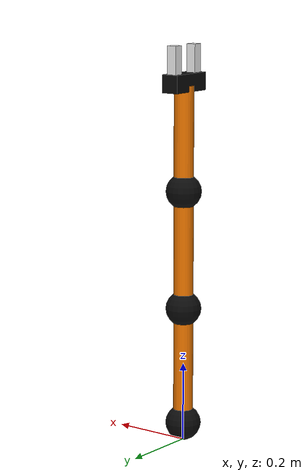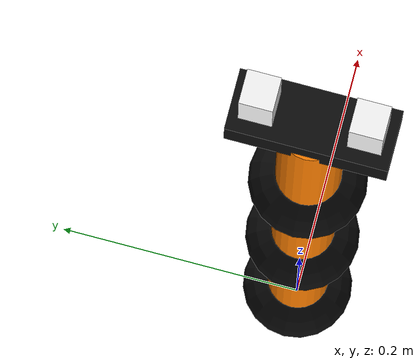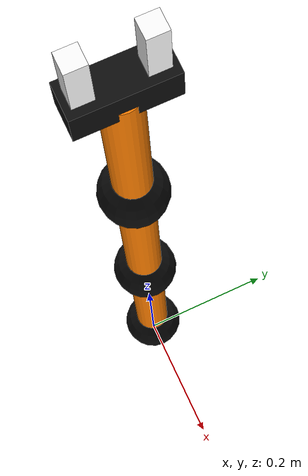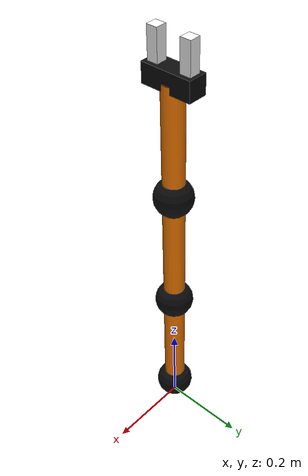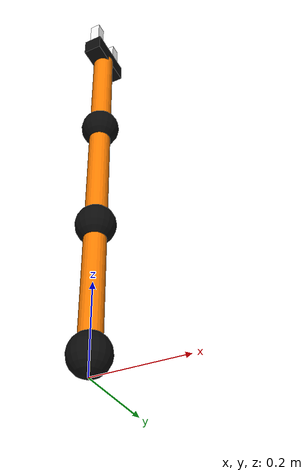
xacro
<?xml version="1.0"?>
<robot name="arm" xmlns:xacro="http://www.ros.org/wiki/xacro">

  <!-- ===== PROPERTIES ===== -->
  <!-- Arm -->
  <xacro:property name="segment_length" value="0.3"/>
  <xacro:property name="link_length"    value="0.23"/>
  <xacro:property name="link_radius"    value="0.025"/>
  <xacro:property name="joint_radius"   value="0.045"/>
  <xacro:property name="joint_limit"    value="1.3"/>
  <xacro:property name="joint_effort"   value="10"/>
  <xacro:property name="joint_velocity" value="1"/>

  <!-- Gripper -->
  <xacro:property name="hand_offset"     value="0.25"/>
  <xacro:property name="hand_x"          value="0.045"/>
  <xacro:property name="hand_y"          value="0.12"/>
  <xacro:property name="hand_z"          value="0.045"/>
  <xacro:property name="finger_x"        value="0.025"/>
  <xacro:property name="finger_y"        value="0.025"/>
  <xacro:property name="finger_z"        value="0.09"/>
  <xacro:property name="finger_spacing"  value="0.04"/>
  <xacro:property name="finger_height"   value="0.07"/>
  <xacro:property name="finger_travel"   value="0.027"/>

  <!-- Masses (kg) -->
  <xacro:property name="base_mass"   value="1.0"/>
  <xacro:property name="link_mass"   value="0.3"/>
  <xacro:property name="sphere_mass" value="0.1"/>
  <xacro:property name="hand_mass"   value="0.1"/>
  <xacro:property name="finger_mass" value="0.05"/>

  <!-- ===== MATERIALS (used by both RViz and the new Gazebo) ===== -->
  <material name="black">
    <color rgba="0.05 0.05 0.05 1"/>
  </material>
  <material name="orange">
    <color rgba="1 0.5 0 1"/>
  </material>
  <material name="white">
    <color rgba="1 1 1 1"/>
  </material>

  <!-- ===== INERTIA MACROS ===== -->
  <xacro:macro name="inertial_box" params="mass x y z xyz">
    <inertial>
      <origin xyz="${xyz}" rpy="0 0 0"/>
      <mass value="${mass}"/>
      <inertia ixx="${mass*(y*y+z*z)/12}" ixy="0" ixz="0"
               iyy="${mass*(x*x+z*z)/12}" iyz="0"
               izz="${mass*(x*x+y*y)/12}"/>
    </inertial>
  </xacro:macro>

  <xacro:macro name="inertial_cylinder" params="mass r h xyz">
    <inertial>
      <origin xyz="${xyz}" rpy="0 0 0"/>
      <mass value="${mass}"/>
      <inertia ixx="${mass*(3*r*r+h*h)/12}" ixy="0" ixz="0"
               iyy="${mass*(3*r*r+h*h)/12}" iyz="0"
               izz="${mass*r*r/2}"/>
    </inertial>
  </xacro:macro>

  <xacro:macro name="inertial_sphere" params="mass r xyz">
    <inertial>
      <origin xyz="${xyz}" rpy="0 0 0"/>
      <mass value="${mass}"/>
      <inertia ixx="${2*mass*r*r/5}" ixy="0" ixz="0"
               iyy="${2*mass*r*r/5}" iyz="0"
               izz="${2*mass*r*r/5}"/>
    </inertial>
  </xacro:macro>

  <!-- ===== ARM SEGMENT MACRO: cylinder link, its revolute joint, and an optional joint sphere on top ===== -->
  <xacro:macro name="arm_segment" params="index parent joint_z top_sphere axis">
    <link name="link${index}">
      <visual>
        <geometry>
          <cylinder length="${link_length}" radius="${link_radius}"/>
        </geometry>
        <origin xyz="0 0 ${segment_length/2}" rpy="0 0 0"/>
        <material name="orange"/>
      </visual>
      <collision>
        <geometry>
          <cylinder length="${link_length}" radius="${link_radius}"/>
        </geometry>
        <origin xyz="0 0 ${segment_length/2}" rpy="0 0 0"/>
      </collision>
      <xacro:inertial_cylinder mass="${link_mass}" r="${link_radius}" h="${link_length}" xyz="0 0 ${segment_length/2}"/>
    </link>

    <joint name="joint${index}" type="revolute">
      <parent link="${parent}"/>
      <child link="link${index}"/>
      <origin xyz="0 0 ${joint_z}" rpy="0 0 0"/>
      <axis xyz="${axis}"/>
      <limit lower="${-joint_limit}" upper="${joint_limit}" effort="${joint_effort}" velocity="${joint_velocity}"/>
    </joint>

    <!-- Joint sphere -->
    <xacro:if value="${top_sphere}">
      <link name="link${index}_sphere">
        <visual>
          <geometry>
            <sphere radius="${joint_radius}"/>
          </geometry>
          <material name="black"/>
        </visual>
        <collision>
          <geometry>
            <sphere radius="${joint_radius}"/>
          </geometry>
        </collision>
        <xacro:inertial_sphere mass="${sphere_mass}" r="${joint_radius}" xyz="0 0 0"/>
      </link>

      <joint name="link${index}_to_sphere" type="fixed">
        <parent link="link${index}"/>
        <child link="link${index}_sphere"/>
        <origin xyz="0 0 ${segment_length}" rpy="0 0 0"/>
      </joint>
    </xacro:if>
  </xacro:macro>

  <!-- ===== FINGER MACRO. reflect = 1 for left, -1 for right ===== -->
  <xacro:macro name="finger" params="side reflect">
    <link name="gripper_finger_${side}">
      <visual>
        <geometry>
          <box size="${finger_x} ${finger_y} ${finger_z}"/>
        </geometry>
        <origin xyz="0 ${reflect*finger_spacing} ${finger_height}" rpy="0 0 0"/>
        <material name="white"/>
      </visual>
      <collision>
        <geometry>
          <box size="${finger_x} ${finger_y} ${finger_z}"/>
        </geometry>
        <origin xyz="0 ${reflect*finger_spacing} ${finger_height}" rpy="0 0 0"/>
      </collision>
      <xacro:inertial_box mass="${finger_mass}" x="${finger_x}" y="${finger_y}" z="${finger_z}" xyz="0 ${reflect*finger_spacing} ${finger_height}"/>
    </link>

    <joint name="gripper_finger_${side}_joint" type="prismatic">
      <parent link="gripper_hand"/>
      <child link="gripper_finger_${side}"/>
      <origin xyz="0 0 0" rpy="0 0 0"/>
      <axis xyz="0 ${-reflect} 0"/>
      <limit lower="0" upper="${finger_travel}" effort="${joint_effort}" velocity="${joint_velocity}"/>
    </joint>
  </xacro:macro>

  <!-- ===== ROS 2 CONTROL JOINT MACRO ===== -->
  <xacro:macro name="control_joint" params="name">
    <joint name="${name}">
      <command_interface name="position"/>
      <state_interface name="position"/>
      <state_interface name="velocity"/>
    </joint>
  </xacro:macro>

  <!-- ===== ROBOT ===== -->
  <!-- World: pins the arm to the ground in Gazebo -->
  <link name="world"/>

  <link name="base_link">
    <visual>
      <geometry>
        <sphere radius="${joint_radius}"/>
      </geometry>
      <material name="black"/>
    </visual>
    <collision>
      <geometry>
        <sphere radius="${joint_radius}"/>
      </geometry>
    </collision>
    <xacro:inertial_sphere mass="${base_mass}" r="${joint_radius}" xyz="0 0 0"/>
  </link>

  <!-- Lifted by the sphere's radius so the base sits on the ground -->
  <joint name="world_to_base" type="fixed">
    <parent link="world"/>
    <child link="base_link"/>
    <origin xyz="0 0 ${joint_radius}" rpy="0 0 0"/>
  </joint>

  <xacro:arm_segment index="1" parent="base_link" joint_z="0"                 top_sphere="true"  axis="0 0 1"/>
  <xacro:arm_segment index="2" parent="link1"     joint_z="${segment_length}" top_sphere="true"  axis="0 1 0"/>
  <xacro:arm_segment index="3" parent="link2"     joint_z="${segment_length}" top_sphere="false" axis="0 1 0"/>

  <link name="gripper_hand">
    <visual>
      <geometry>
        <box size="${hand_x} ${hand_y} ${hand_z}"/>
      </geometry>
      <origin xyz="0 0 ${hand_z/2}" rpy="0 0 0"/>
      <material name="black"/>
    </visual>
    <collision>
      <geometry>
        <box size="${hand_x} ${hand_y} ${hand_z}"/>
      </geometry>
      <origin xyz="0 0 ${hand_z/2}" rpy="0 0 0"/>
    </collision>
    <xacro:inertial_box mass="${hand_mass}" x="${hand_x}" y="${hand_y}" z="${hand_z}" xyz="0 0 ${hand_z/2}"/>
  </link>

  <joint name="gripper_joint" type="fixed">
    <parent link="link3"/>
    <child link="gripper_hand"/>
    <origin xyz="0 0 ${hand_offset}" rpy="0 0 0"/>
  </joint>

  <xacro:finger side="left"  reflect="1"/>
  <xacro:finger side="right" reflect="-1"/>

  <!-- ===== ROS 2 CONTROL (new Gazebo) ===== -->
  <ros2_control name="GazeboSimSystem" type="system">
    <hardware>
      <plugin>gz_ros2_control/GazeboSimSystem</plugin>
    </hardware>
    <xacro:control_joint name="joint1"/>
    <xacro:control_joint name="joint2"/>
    <xacro:control_joint name="joint3"/>
    <xacro:control_joint name="gripper_finger_left_joint"/>
    <xacro:control_joint name="gripper_finger_right_joint"/>
  </ros2_control>

  <gazebo>
    <plugin filename="gz_ros2_control-system" name="gz_ros2_control::GazeboSimROS2ControlPlugin">
      <parameters>$(find arm_description)/config/arm_controllers.yaml</parameters>
    </plugin>
  </gazebo>

</robot>
